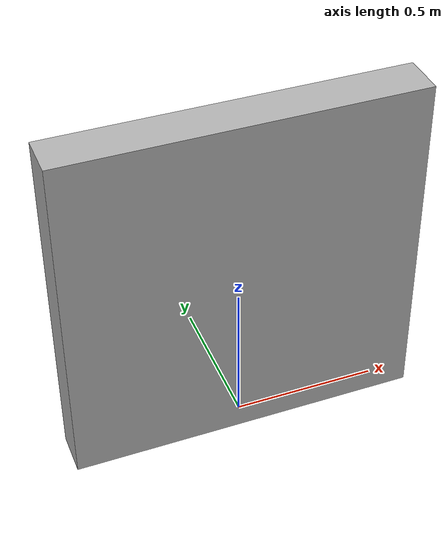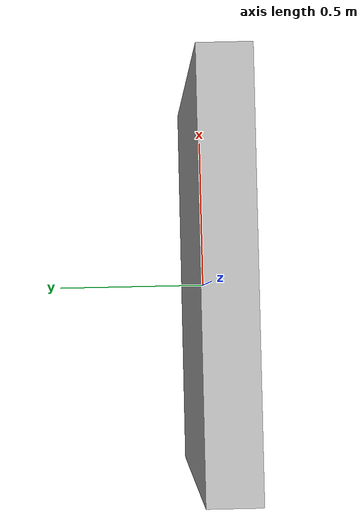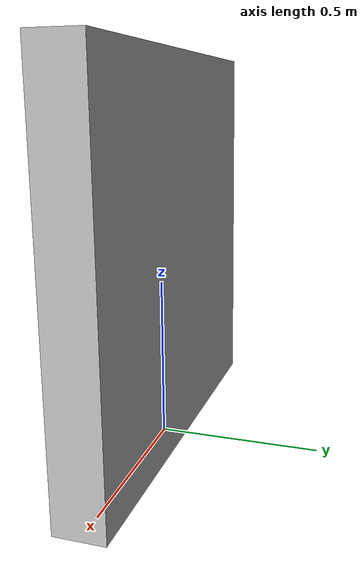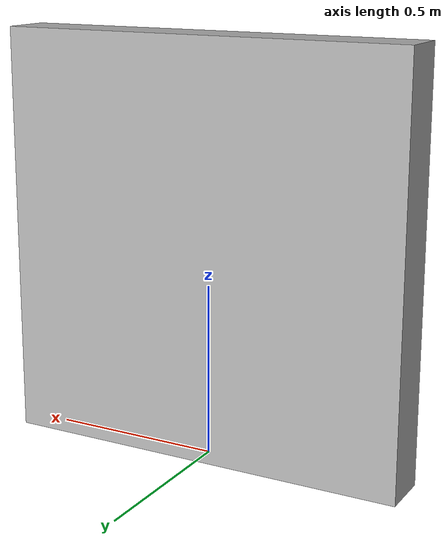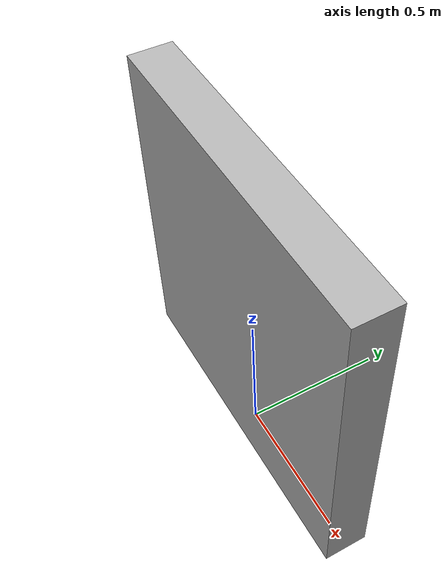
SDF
<?xml version="1.0"?>
<sdf version="1.10">
  <model name="nist_maze_wall_120">
    <static>true</static>
    <link name="wall">
      <pose>0 0 0.6 0 0 0</pose>
      <collision name="collision">
        <geometry>
          <box>
            <size>1.2 0.15 1.2</size>
          </box>
        </geometry>
        <surface>
          <friction>
            <ode>
              <mu>1.0</mu>
              <mu2>1.0</mu2>
            </ode>
          </friction>
        </surface>
      </collision>
      <visual name="visual">
        <geometry>
          <box>
            <size>1.2 0.15 1.2</size>
          </box>
        </geometry>
        <material>
          <ambient>0.6 0.6 0.6 1</ambient>
          <diffuse>0.7 0.7 0.7 1</diffuse>
          <specular>0.3 0.3 0.3 1</specular>
        </material>
      </visual>
      <inertial>
        <mass>25.0</mass>
        <inertia>
          <ixx>1.0</ixx>
          <iyy>1.0</iyy>
          <izz>1.0</izz>
          <ixy>0</ixy>
          <ixz>0</ixz>
          <iyz>0</iyz>
        </inertia>
      </inertial>
    </link>
  </model>
</sdf>
